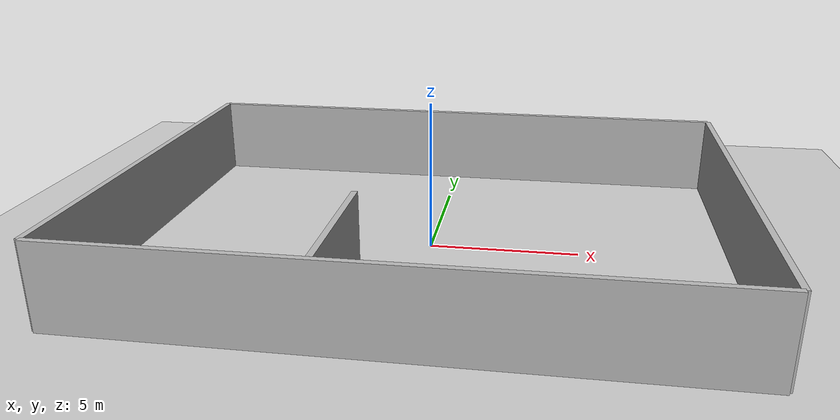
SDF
<?xml version="1.0" ?>
<sdf version="1.5">
  <world name="default">
    <include>
      <uri>model://ground_plane</uri>
    </include>

    <include>
      <uri>model://sun</uri>
    </include>

    <!-- Cấu trúc tường theo style service.world: 1 model, 1 link, nhiều collision -->
    <model name="walls">
      <static>1</static>
      <link name="link">
        <gravity>0</gravity>
        <self_collide>0</self_collide>
        <kinematic>0</kinematic>

        <collision name="collision_1">
          <pose frame=''>0.0 -7.5 1.4 0 0 0.0</pose>
          <geometry>
            <box>
              <size>20.0 0.2 2.8</size>
            </box>
          </geometry>
          <max_contacts>10</max_contacts>
          <surface>
            <contact><ode/></contact>
            <bounce/>
            <friction><torsional><ode/></torsional><ode/></friction>
          </surface>
        </collision>
        <visual name="visual_1">
          <pose frame=''>0.0 -7.5 1.4 0 0 0.0</pose>
          <cast_shadows>0</cast_shadows>
          <geometry>
            <box>
              <size>20.0 0.2 2.8</size>
            </box>
          </geometry>
        </visual>

        <collision name="collision_2">
          <pose frame=''>-10.0 0.0 1.4 0 0 1.57</pose>
          <geometry>
            <box>
              <size>15.0 0.2 2.8</size>
            </box>
          </geometry>
          <max_contacts>10</max_contacts>
          <surface>
            <contact><ode/></contact>
            <bounce/>
            <friction><torsional><ode/></torsional><ode/></friction>
          </surface>
        </collision>
        <visual name="visual_2">
          <pose frame=''>-10.0 0.0 1.4 0 0 1.57</pose>
          <cast_shadows>0</cast_shadows>
          <geometry>
            <box>
              <size>15.0 0.2 2.8</size>
            </box>
          </geometry>
        </visual>

        <collision name="collision_3">
          <pose frame=''>0.0 7.5 1.4 0 0 0.0</pose>
          <geometry>
            <box>
              <size>20.0 0.2 2.8</size>
            </box>
          </geometry>
          <max_contacts>10</max_contacts>
          <surface>
            <contact><ode/></contact>
            <bounce/>
            <friction><torsional><ode/></torsional><ode/></friction>
          </surface>
        </collision>
        <visual name="visual_3">
          <pose frame=''>0.0 7.5 1.4 0 0 0.0</pose>
          <cast_shadows>0</cast_shadows>
          <geometry>
            <box>
              <size>20.0 0.2 2.8</size>
            </box>
          </geometry>
        </visual>

        <collision name="collision_4">
          <pose frame=''>10.0 0.0 1.4 0 0 1.57</pose>
          <geometry>
            <box>
              <size>15.0 0.2 2.8</size>
            </box>
          </geometry>
          <max_contacts>10</max_contacts>
          <surface>
            <contact><ode/></contact>
            <bounce/>
            <friction><torsional><ode/></torsional><ode/></friction>
          </surface>
        </collision>
        <visual name="visual_4">
          <pose frame=''>10.0 0.0 1.4 0 0 1.57</pose>
          <cast_shadows>0</cast_shadows>
          <geometry>
            <box>
              <size>15.0 0.2 2.8</size>
            </box>
          </geometry>
        </visual>

        <collision name="collision_5">
          <pose frame=''>-2.0 -5.0 1.4 0 0 1.57</pose>
          <geometry>
            <box>
              <size>5.0 0.2 2.8</size>
            </box>
          </geometry>
          <max_contacts>10</max_contacts>
          <surface>
            <contact><ode/></contact>
            <bounce/>
            <friction><torsional><ode/></torsional><ode/></friction>
          </surface>
        </collision>
        <visual name="visual_5">
          <pose frame=''>-2.0 -5.0 1.4 0 0 1.57</pose>
          <cast_shadows>0</cast_shadows>
          <geometry>
            <box>
              <size>5.0 0.2 2.8</size>
            </box>
          </geometry>
        </visual>
      </link>
    </model>

    <plugin filename="libcollision_map_creator.so" name="collision_map_creator"/>
    <plugin name="ActorPosesPlugin" filename="libActorPosesPlugin.so"/>
  </world>
</sdf>
